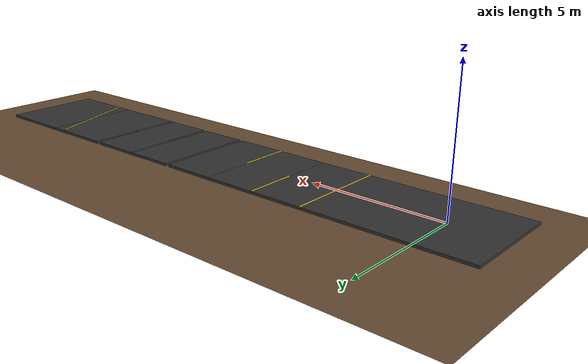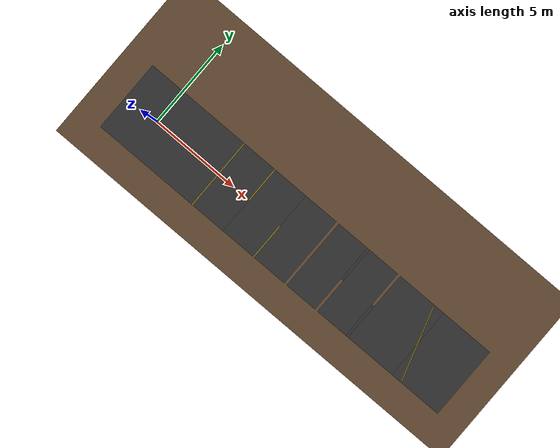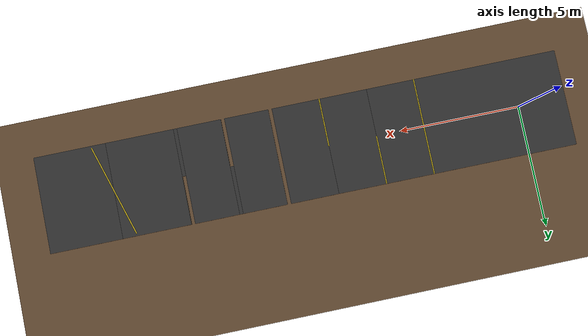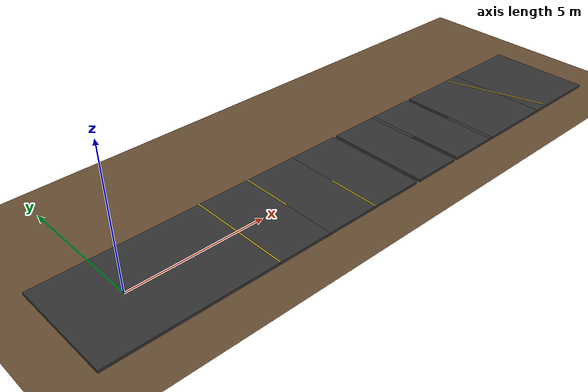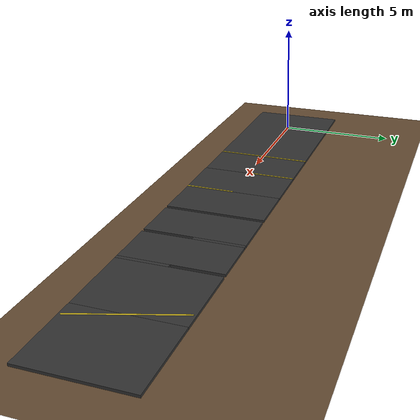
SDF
<?xml version="1.0" ?>
<sdf version="1.8">
  <world name="street_world">
    <physics name="1ms" type="ignored">
      <max_step_size>0.001</max_step_size>
      <real_time_factor>1.0</real_time_factor>
    </physics>
    <plugin filename="gz-sim-physics-system" name="gz::sim::systems::Physics"/>
    <plugin filename="gz-sim-user-commands-system" name="gz::sim::systems::UserCommands"/>
    <plugin filename="gz-sim-scene-broadcaster-system" name="gz::sim::systems::SceneBroadcaster"/>

    <light type="directional" name="sun">
      <cast_shadows>true</cast_shadows>
      <pose>0 0 10 0 0 0</pose>
      <diffuse>0.8 0.8 0.8 1</diffuse>
      <specular>0.2 0.2 0.2 1</specular>
      <direction>-0.5 0.1 -0.9</direction>
    </light>

    <model name="base_ground">
      <static>true</static>
      <pose>0 0 -0.10 0 0 0</pose>
      <link name="link">
        <collision name="collision"><geometry><plane><normal>0 0 1</normal><size>100 100</size></plane></geometry></collision>
        <visual name="visual">
          <geometry><plane><normal>0 0 1</normal><size>100 100</size></plane></geometry>
          <material><ambient>0.4 0.3 0.2 1</ambient><diffuse>0.4 0.3 0.2 1</diffuse></material>
        </visual>
      </link>
    </model>

    <model name="road_start">
      <static>true</static>
      <pose>1.0 0 -0.05 0 0 0</pose>
      <link name="link">
        <collision name="collision"><geometry><box><size>6.0 4.0 0.1</size></box></geometry></collision>
        <visual name="visual">
          <geometry><box><size>6.0 4.0 0.1</size></box></geometry>
          <material><ambient>0.2 0.2 0.2 1</ambient><diffuse>0.2 0.2 0.2 1</diffuse></material>
        </visual>
      </link>
    </model>

    <model name="bump_full">
      <static>true</static>
      <pose>4.0 0 0.0 1.570796 0 0.0</pose>
      <link name="link">
        <collision name="collision"><geometry><cylinder><radius>0.025</radius><length>4.0</length></cylinder></geometry></collision>
        <visual name="visual">
          <geometry><cylinder><radius>0.025</radius><length>4.0</length></cylinder></geometry>
          <material><ambient>0.8 0.7 0.1 1</ambient><diffuse>0.8 0.7 0.1 1</diffuse></material>
        </visual>
      </link>
    </model>

    <model name="road_2">
      <static>true</static>
      <pose>5.0 0 -0.05 0 0 0</pose>
      <link name="link">
        <collision name="collision"><geometry><box><size>2.0 4.0 0.1</size></box></geometry></collision>
        <visual name="visual">
          <geometry><box><size>2.0 4.0 0.1</size></box></geometry>
          <material><ambient>0.2 0.2 0.2 1</ambient><diffuse>0.2 0.2 0.2 1</diffuse></material>
        </visual>
      </link>
    </model>

    <model name="bump_left_only">
      <static>true</static>
      <pose>6.0 1.0 0.0 1.570796 0 0.0</pose>
      <link name="link">
        <collision name="collision"><geometry><cylinder><radius>0.025</radius><length>2.0</length></cylinder></geometry></collision>
        <visual name="visual">
          <geometry><cylinder><radius>0.025</radius><length>2.0</length></cylinder></geometry>
          <material><ambient>0.8 0.7 0.1 1</ambient><diffuse>0.8 0.7 0.1 1</diffuse></material>
        </visual>
      </link>
    </model>

    <model name="road_3">
      <static>true</static>
      <pose>7.0 0 -0.05 0 0 0</pose>
      <link name="link">
        <collision name="collision"><geometry><box><size>2.0 4.0 0.1</size></box></geometry></collision>
        <visual name="visual">
          <geometry><box><size>2.0 4.0 0.1</size></box></geometry>
          <material><ambient>0.2 0.2 0.2 1</ambient><diffuse>0.2 0.2 0.2 1</diffuse></material>
        </visual>
      </link>
    </model>

    <model name="bump_right_only">
      <static>true</static>
      <pose>8.0 -1.0 0.0 1.570796 0 0.0</pose>
      <link name="link">
        <collision name="collision"><geometry><cylinder><radius>0.025</radius><length>2.0</length></cylinder></geometry></collision>
        <visual name="visual">
          <geometry><cylinder><radius>0.025</radius><length>2.0</length></cylinder></geometry>
          <material><ambient>0.8 0.7 0.1 1</ambient><diffuse>0.8 0.7 0.1 1</diffuse></material>
        </visual>
      </link>
    </model>

    <model name="road_4">
      <static>true</static>
      <pose>9.0 0 -0.05 0 0 0</pose>
      <link name="link">
        <collision name="collision"><geometry><box><size>2.0 4.0 0.1</size></box></geometry></collision>
        <visual name="visual">
          <geometry><box><size>2.0 4.0 0.1</size></box></geometry>
          <material><ambient>0.2 0.2 0.2 1</ambient><diffuse>0.2 0.2 0.2 1</diffuse></material>
        </visual>
      </link>
    </model>

    <model name="road_5">
      <static>true</static>
      <pose>11.075 0 -0.05 0 0 0</pose>
      <link name="link">
        <collision name="collision"><geometry><box><size>1.85 4.0 0.1</size></box></geometry></collision>
        <visual name="visual">
          <geometry><box><size>1.85 4.0 0.1</size></box></geometry>
          <material><ambient>0.2 0.2 0.2 1</ambient><diffuse>0.2 0.2 0.2 1</diffuse></material>
        </visual>
      </link>
    </model>

    <model name="bridge_left">
      <static>true</static>
      <pose>12.075 1.0 -0.05 0 0 0</pose>
      <link name="link">
        <collision name="collision"><geometry><box><size>0.15 2.0 0.1</size></box></geometry></collision>
        <visual name="visual">
          <geometry><box><size>0.15 2.0 0.1</size></box></geometry>
          <material><ambient>0.2 0.2 0.2 1</ambient><diffuse>0.2 0.2 0.2 1</diffuse></material>
        </visual>
      </link>
    </model>

    <model name="road_6">
      <static>true</static>
      <pose>13.075 0 -0.05 0 0 0</pose>
      <link name="link">
        <collision name="collision"><geometry><box><size>1.85 4.0 0.1</size></box></geometry></collision>
        <visual name="visual">
          <geometry><box><size>1.85 4.0 0.1</size></box></geometry>
          <material><ambient>0.2 0.2 0.2 1</ambient><diffuse>0.2 0.2 0.2 1</diffuse></material>
        </visual>
      </link>
    </model>

    <model name="bridge_right">
      <static>true</static>
      <pose>14.075 -1.0 -0.05 0 0 0</pose>
      <link name="link">
        <collision name="collision"><geometry><box><size>0.15 2.0 0.1</size></box></geometry></collision>
        <visual name="visual">
          <geometry><box><size>0.15 2.0 0.1</size></box></geometry>
          <material><ambient>0.2 0.2 0.2 1</ambient><diffuse>0.2 0.2 0.2 1</diffuse></material>
        </visual>
      </link>
    </model>

    <model name="road_7">
      <static>true</static>
      <pose>15.575 0 -0.05 0 0 0</pose>
      <link name="link">
        <collision name="collision"><geometry><box><size>2.85 4.0 0.1</size></box></geometry></collision>
        <visual name="visual">
          <geometry><box><size>2.85 4.0 0.1</size></box></geometry>
          <material><ambient>0.2 0.2 0.2 1</ambient><diffuse>0.2 0.2 0.2 1</diffuse></material>
        </visual>
      </link>
    </model>

    <model name="bump_angled">
      <static>true</static>
      <pose>17.0 0 0.0 1.570796 0 0.3</pose>
      <link name="link">
        <collision name="collision"><geometry><cylinder><radius>0.025</radius><length>4.0</length></cylinder></geometry></collision>
        <visual name="visual">
          <geometry><cylinder><radius>0.025</radius><length>4.0</length></cylinder></geometry>
          <material><ambient>0.8 0.7 0.1 1</ambient><diffuse>0.8 0.7 0.1 1</diffuse></material>
        </visual>
      </link>
    </model>

    <model name="road_end">
      <static>true</static>
      <pose>18.5 0 -0.05 0 0 0</pose>
      <link name="link">
        <collision name="collision"><geometry><box><size>3.0 4.0 0.1</size></box></geometry></collision>
        <visual name="visual">
          <geometry><box><size>3.0 4.0 0.1</size></box></geometry>
          <material><ambient>0.2 0.2 0.2 1</ambient><diffuse>0.2 0.2 0.2 1</diffuse></material>
        </visual>
      </link>
    </model>

  </world>
</sdf>
